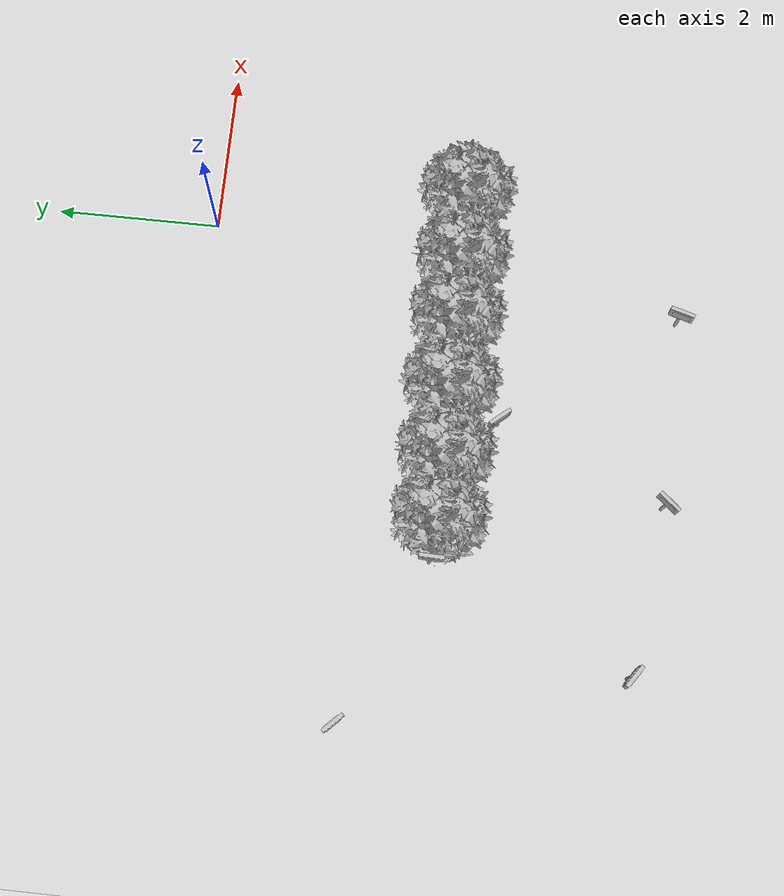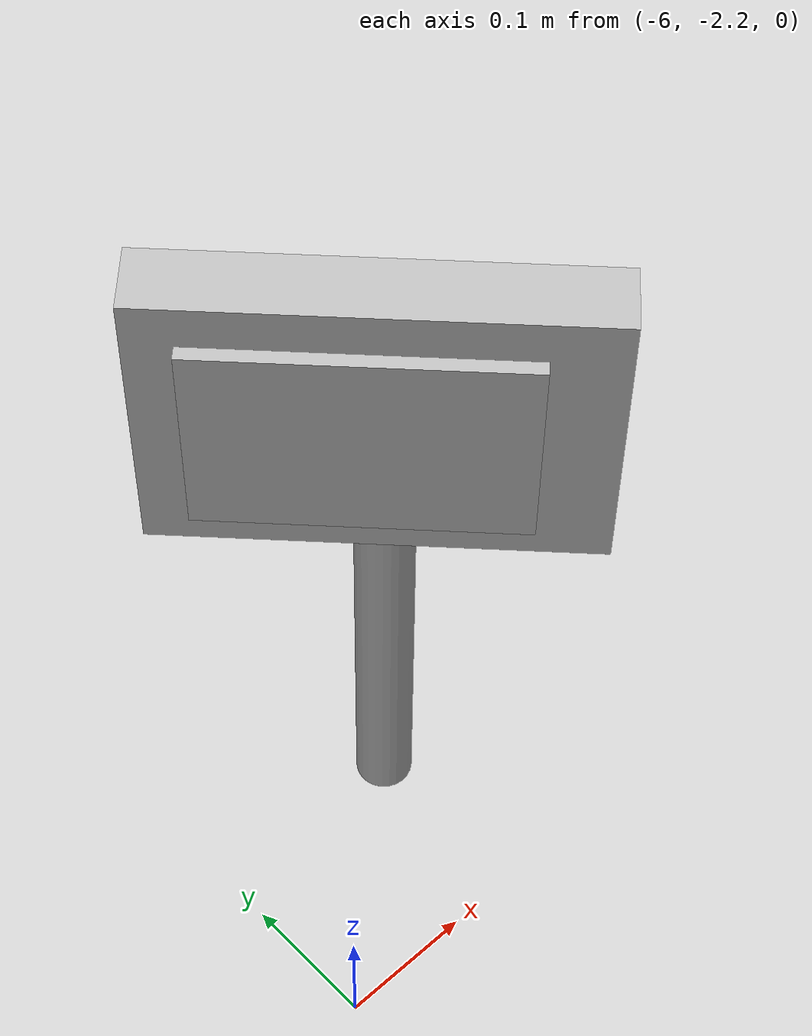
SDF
<sdf version="1.7">
 <world name="default">
  <model name="ground_plane">
   <static>1</static>
   <link name="link">
    <collision name="collision">
     <geometry><plane><normal>0 0 1</normal><size>100 100</size></plane></geometry>
     <surface><friction><ode><mu>100</mu><mu2>50</mu2></ode></friction></surface>
    </collision>
    <visual name="visual">
     <cast_shadows>0</cast_shadows>
     <geometry><plane><normal>0 0 1</normal><size>100 100</size></plane></geometry>
     <material>
      <script><uri>file://media/materials/scripts/gazebo.material</uri><name>Gazebo/Grey</name></script>
     </material>
    </visual>
   </link>
  </model>
  <model name="abbfre_5">
   <link name="link_0">
    <inertial>
     <mass>1</mass>
     <inertia>
      <ixx>0.166667</ixx>
      <ixy>0</ixy>
      <ixz>0</ixz>
      <iyy>0.166667</iyy>
      <iyz>0</iyz>
      <izz>0.166667</izz>
     </inertia>
    </inertial>
    <pose>0 0 -0 1.60917 -0 0</pose>
    <visual name="visual">
     <geometry><mesh><uri>model://abbfre/meshes/arbufres.obj</uri><scale>1 1 1</scale></mesh></geometry>
    </visual>
    <collision name="collision">
     <geometry><mesh><uri>model://abbfre/meshes/arbufres.obj</uri><scale>1 1 1</scale></mesh></geometry>
     <surface>
      <friction>
       <ode><mu>1</mu><mu2>1</mu2><fdir1>0 0 0</fdir1><slip1>0</slip1><slip2>0</slip2></ode>
       <torsional>
        <coefficient>1</coefficient>
        <patch_radius>0</patch_radius>
        <surface_radius>0</surface_radius>
        <use_patch_radius>1</use_patch_radius>
        <ode><slip>0</slip></ode>
       </torsional>
      </friction>
      <bounce><restitution_coefficient>0</restitution_coefficient><threshold>1e+06</threshold></bounce>
      <contact>
       <collide_without_contact>0</collide_without_contact>
       <collide_without_contact_bitmask>1</collide_without_contact_bitmask>
       <collide_bitmask>1</collide_bitmask>
       <ode>
        <soft_cfm>0</soft_cfm>
        <soft_erp>0.2</soft_erp>
        <kp>1e+13</kp>
        <kd>1</kd>
        <max_vel>0.01</max_vel>
        <min_depth>0</min_depth>
       </ode>
       <bullet>
        <split_impulse>1</split_impulse>
        <split_impulse_penetration_threshold>-0.01</split_impulse_penetration_threshold>
        <soft_cfm>0</soft_cfm>
        <soft_erp>0.2</soft_erp>
        <kp>1e+13</kp>
        <kd>1</kd>
       </bullet>
      </contact>
     </surface>
    </collision>
   </link>
   <static>1</static>
   <pose>-2.51391 -2.9563 0 0 -0 0</pose>
  </model>
  <model name="abbfre_6">
   <link name="link_0">
    <inertial>
     <mass>1</mass>
     <inertia>
      <ixx>0.166667</ixx>
      <ixy>0</ixy>
      <ixz>0</ixz>
      <iyy>0.166667</iyy>
      <iyz>0</iyz>
      <izz>0.166667</izz>
     </inertia>
    </inertial>
    <pose>0 0 -0 1.60917 -0 0</pose>
    <visual name="visual">
     <geometry><mesh><uri>model://abbfre/meshes/arbufres.obj</uri><scale>1 1 1</scale></mesh></geometry>
    </visual>
    <collision name="collision">
     <geometry><mesh><uri>model://abbfre/meshes/arbufres.obj</uri><scale>1 1 1</scale></mesh></geometry>
     <surface>
      <friction>
       <ode><mu>1</mu><mu2>1</mu2><fdir1>0 0 0</fdir1><slip1>0</slip1><slip2>0</slip2></ode>
       <torsional>
        <coefficient>1</coefficient>
        <patch_radius>0</patch_radius>
        <surface_radius>0</surface_radius>
        <use_patch_radius>1</use_patch_radius>
        <ode><slip>0</slip></ode>
       </torsional>
      </friction>
      <bounce><restitution_coefficient>0</restitution_coefficient><threshold>1e+06</threshold></bounce>
      <contact>
       <collide_without_contact>0</collide_without_contact>
       <collide_without_contact_bitmask>1</collide_without_contact_bitmask>
       <collide_bitmask>1</collide_bitmask>
       <ode>
        <soft_cfm>0</soft_cfm>
        <soft_erp>0.2</soft_erp>
        <kp>1e+13</kp>
        <kd>1</kd>
        <max_vel>0.01</max_vel>
        <min_depth>0</min_depth>
       </ode>
       <bullet>
        <split_impulse>1</split_impulse>
        <split_impulse_penetration_threshold>-0.01</split_impulse_penetration_threshold>
        <soft_cfm>0</soft_cfm>
        <soft_erp>0.2</soft_erp>
        <kp>1e+13</kp>
        <kd>1</kd>
       </bullet>
      </contact>
     </surface>
    </collision>
   </link>
   <static>1</static>
   <pose>-0.009938 -2.95191 0 0 -0 0</pose>
  </model>
  <model name="letrero_riego_0">
   <link name="link_0">
    <inertial>
     <mass>0.0543151</mass>
     <inertia>
      <ixx>4.90351e-06</ixx>
      <ixy>0</ixy>
      <ixz>0</ixz>
      <iyy>4.90351e-06</iyy>
      <iyz>0</iyz>
      <izz>1.12837e-07</izz>
     </inertia>
    </inertial>
    <pose>0.002515 0.005109 0.153562 0 -0 0</pose>
    <visual name="visual">
     <geometry><cylinder><radius>0.0203836</radius><length>0.327243</length></cylinder></geometry>
     <material>
      <lighting>1</lighting>
      <script>
       <uri>model://letrero_riego/madera/scripts</uri>
       <uri>model://letrero_riego/madera/textures</uri>
       <name>textur/madera</name>
      </script>
      <shader type="pixel"/>
      <emissive>0 0 0 1</emissive>
     </material>
    </visual>
    <collision name="collision">
     <geometry><cylinder><radius>0.020384</radius><length>0.327243</length></cylinder></geometry>
     <surface>
      <friction>
       <ode><mu>1</mu><mu2>1</mu2><fdir1>0 0 0</fdir1><slip1>0</slip1><slip2>0</slip2></ode>
       <torsional>
        <coefficient>1</coefficient>
        <patch_radius>0</patch_radius>
        <surface_radius>0</surface_radius>
        <use_patch_radius>1</use_patch_radius>
        <ode><slip>0</slip></ode>
       </torsional>
      </friction>
      <bounce><restitution_coefficient>0</restitution_coefficient><threshold>1e+06</threshold></bounce>
      <contact>
       <collide_without_contact>0</collide_without_contact>
       <collide_without_contact_bitmask>1</collide_without_contact_bitmask>
       <collide_bitmask>1</collide_bitmask>
       <ode>
        <soft_cfm>0</soft_cfm>
        <soft_erp>0.2</soft_erp>
        <kp>1e+13</kp>
        <kd>1</kd>
        <max_vel>0.01</max_vel>
        <min_depth>0</min_depth>
       </ode>
       <bullet>
        <split_impulse>1</split_impulse>
        <split_impulse_penetration_threshold>-0.01</split_impulse_penetration_threshold>
        <soft_cfm>0</soft_cfm>
        <soft_erp>0.2</soft_erp>
        <kp>1e+13</kp>
        <kd>1</kd>
       </bullet>
      </contact>
     </surface>
    </collision>
   </link>
   <link name="link_1">
    <inertial>
     <mass>0.00299633</mass>
     <inertia>
      <ixx>1.27855e-05</ixx>
      <ixy>0</ixy>
      <ixz>0</ixz>
      <iyy>3.42923e-05</iyy>
      <iyz>0</iyz>
      <izz>2.25402e-05</izz>
     </inertia>
    </inertial>
    <pose>-0.001542 0.002452 0.422031 0 -0 0</pose>
    <visual name="visual">
     <geometry><box><size>0.296988 0.04549 0.221665</size></box></geometry>
     <material>
      <lighting>1</lighting>
      <script>
       <uri>model://letrero_riego/madera/scripts</uri>
       <uri>model://letrero_riego/madera/textures</uri>
       <name>textur/madera</name>
      </script>
      <shader type="pixel"/>
      <emissive>0 0 0 1</emissive>
     </material>
    </visual>
    <collision name="collision">
     <geometry><box><size>0.296988 0.04549 0.221665</size></box></geometry>
     <surface>
      <friction>
       <ode><mu>1</mu><mu2>1</mu2><fdir1>0 0 0</fdir1><slip1>0</slip1><slip2>0</slip2></ode>
       <torsional>
        <coefficient>1</coefficient>
        <patch_radius>0</patch_radius>
        <surface_radius>0</surface_radius>
        <use_patch_radius>1</use_patch_radius>
        <ode><slip>0</slip></ode>
       </torsional>
      </friction>
      <bounce><restitution_coefficient>0</restitution_coefficient><threshold>1e+06</threshold></bounce>
      <contact>
       <collide_without_contact>0</collide_without_contact>
       <collide_without_contact_bitmask>1</collide_without_contact_bitmask>
       <collide_bitmask>1</collide_bitmask>
       <ode>
        <soft_cfm>0</soft_cfm>
        <soft_erp>0.2</soft_erp>
        <kp>1e+13</kp>
        <kd>1</kd>
        <max_vel>0.01</max_vel>
        <min_depth>0</min_depth>
       </ode>
       <bullet>
        <split_impulse>1</split_impulse>
        <split_impulse_penetration_threshold>-0.01</split_impulse_penetration_threshold>
        <soft_cfm>0</soft_cfm>
        <soft_erp>0.2</soft_erp>
        <kp>1e+13</kp>
        <kd>1</kd>
       </bullet>
      </contact>
     </surface>
    </collision>
   </link>
   <link name="link_2">
    <inertial>
     <mass>0.00173577</mass>
     <inertia>
      <ixx>4.23206e-06</ixx>
      <ixy>0</ixy>
      <ixz>0</ixz>
      <iyy>1.03921e-05</iyy>
      <iyz>0</iyz>
      <izz>7.37287e-06</izz>
     </inertia>
    </inertial>
    <pose>-0.010225 0.002657 0.421501 0 -0 0</pose>
    <visual name="visual">
     <geometry><box><size>0.216284 0.064749 0.15832</size></box></geometry>
     <material>
      <lighting>1</lighting>
      <script>
       <uri>model://letrero_riego/materials/scripts</uri>
       <uri>model://letrero_riego/materials/textures</uri>
       <name>textur/riego</name>
      </script>
      <shader type="pixel"/>
      <emissive>0 0 0 1</emissive>
     </material>
    </visual>
    <collision name="collision">
     <geometry><box><size>0.216284 0.064749 0.15832</size></box></geometry>
     <surface>
      <friction>
       <ode><mu>1</mu><mu2>1</mu2><fdir1>0 0 0</fdir1><slip1>0</slip1><slip2>0</slip2></ode>
       <torsional>
        <coefficient>1</coefficient>
        <patch_radius>0</patch_radius>
        <surface_radius>0</surface_radius>
        <use_patch_radius>1</use_patch_radius>
        <ode><slip>0</slip></ode>
       </torsional>
      </friction>
      <bounce><restitution_coefficient>0</restitution_coefficient><threshold>1e+06</threshold></bounce>
      <contact>
       <collide_without_contact>0</collide_without_contact>
       <collide_without_contact_bitmask>1</collide_without_contact_bitmask>
       <collide_bitmask>1</collide_bitmask>
       <ode>
        <soft_cfm>0</soft_cfm>
        <soft_erp>0.2</soft_erp>
        <kp>1e+13</kp>
        <kd>1</kd>
        <max_vel>0.01</max_vel>
        <min_depth>0</min_depth>
       </ode>
       <bullet>
        <split_impulse>1</split_impulse>
        <split_impulse_penetration_threshold>-0.01</split_impulse_penetration_threshold>
        <soft_cfm>0</soft_cfm>
        <soft_erp>0.2</soft_erp>
        <kp>1e+13</kp>
        <kd>1</kd>
       </bullet>
      </contact>
     </surface>
    </collision>
   </link>
   <joint name="link_0_JOINT_1" type="fixed">
    <parent>link_0</parent>
    <child>link_1</child>
    <physics>
     <ode><limit><cfm>0</cfm><erp>0.2</erp></limit><suspension><cfm>0</cfm><erp>0.2</erp></suspension></ode>
    </physics>
   </joint>
   <joint name="link_0_JOINT_2" type="fixed">
    <parent>link_0</parent>
    <child>link_2</child>
    <physics>
     <ode><limit><cfm>0</cfm><erp>0.2</erp></limit><suspension><cfm>0</cfm><erp>0.2</erp></suspension></ode>
    </physics>
   </joint>
   <static>1</static>
   <pose>-5.86584 -2.08096 0.04184 0 0 -0.797668</pose>
  </model>
  <model name="letrero_riego_4">
   <link name="link_0">
    <inertial>
     <mass>0.0543151</mass>
     <inertia>
      <ixx>4.90351e-06</ixx>
      <ixy>0</ixy>
      <ixz>0</ixz>
      <iyy>4.90351e-06</iyy>
      <iyz>0</iyz>
      <izz>1.12837e-07</izz>
     </inertia>
    </inertial>
    <pose>0.002515 0.005109 0.153562 0 -0 0</pose>
    <visual name="visual">
     <geometry><cylinder><radius>0.0203836</radius><length>0.327243</length></cylinder></geometry>
     <material>
      <lighting>1</lighting>
      <script>
       <uri>model://letrero_riego/madera/scripts</uri>
       <uri>model://letrero_riego/madera/textures</uri>
       <name>textur/madera</name>
      </script>
      <shader type="pixel"/>
      <emissive>0 0 0 1</emissive>
     </material>
    </visual>
    <collision name="collision">
     <geometry><cylinder><radius>0.020384</radius><length>0.327243</length></cylinder></geometry>
     <surface>
      <friction>
       <ode><mu>1</mu><mu2>1</mu2><fdir1>0 0 0</fdir1><slip1>0</slip1><slip2>0</slip2></ode>
       <torsional>
        <coefficient>1</coefficient>
        <patch_radius>0</patch_radius>
        <surface_radius>0</surface_radius>
        <use_patch_radius>1</use_patch_radius>
        <ode><slip>0</slip></ode>
       </torsional>
      </friction>
      <bounce><restitution_coefficient>0</restitution_coefficient><threshold>1e+06</threshold></bounce>
      <contact>
       <collide_without_contact>0</collide_without_contact>
       <collide_without_contact_bitmask>1</collide_without_contact_bitmask>
       <collide_bitmask>1</collide_bitmask>
       <ode>
        <soft_cfm>0</soft_cfm>
        <soft_erp>0.2</soft_erp>
        <kp>1e+13</kp>
        <kd>1</kd>
        <max_vel>0.01</max_vel>
        <min_depth>0</min_depth>
       </ode>
       <bullet>
        <split_impulse>1</split_impulse>
        <split_impulse_penetration_threshold>-0.01</split_impulse_penetration_threshold>
        <soft_cfm>0</soft_cfm>
        <soft_erp>0.2</soft_erp>
        <kp>1e+13</kp>
        <kd>1</kd>
       </bullet>
      </contact>
     </surface>
    </collision>
   </link>
   <link name="link_1">
    <inertial>
     <mass>0.00299633</mass>
     <inertia>
      <ixx>1.27855e-05</ixx>
      <ixy>0</ixy>
      <ixz>0</ixz>
      <iyy>3.42923e-05</iyy>
      <iyz>0</iyz>
      <izz>2.25402e-05</izz>
     </inertia>
    </inertial>
    <pose>-0.001542 0.002452 0.422031 0 -0 0</pose>
    <visual name="visual">
     <geometry><box><size>0.296988 0.04549 0.221665</size></box></geometry>
     <material>
      <lighting>1</lighting>
      <script>
       <uri>model://letrero_riego/madera/scripts</uri>
       <uri>model://letrero_riego/madera/textures</uri>
       <name>textur/madera</name>
      </script>
      <shader type="pixel"/>
      <emissive>0 0 0 1</emissive>
     </material>
    </visual>
    <collision name="collision">
     <geometry><box><size>0.296988 0.04549 0.221665</size></box></geometry>
     <surface>
      <friction>
       <ode><mu>1</mu><mu2>1</mu2><fdir1>0 0 0</fdir1><slip1>0</slip1><slip2>0</slip2></ode>
       <torsional>
        <coefficient>1</coefficient>
        <patch_radius>0</patch_radius>
        <surface_radius>0</surface_radius>
        <use_patch_radius>1</use_patch_radius>
        <ode><slip>0</slip></ode>
       </torsional>
      </friction>
      <bounce><restitution_coefficient>0</restitution_coefficient><threshold>1e+06</threshold></bounce>
      <contact>
       <collide_without_contact>0</collide_without_contact>
       <collide_without_contact_bitmask>1</collide_without_contact_bitmask>
       <collide_bitmask>1</collide_bitmask>
       <ode>
        <soft_cfm>0</soft_cfm>
        <soft_erp>0.2</soft_erp>
        <kp>1e+13</kp>
        <kd>1</kd>
        <max_vel>0.01</max_vel>
        <min_depth>0</min_depth>
       </ode>
       <bullet>
        <split_impulse>1</split_impulse>
        <split_impulse_penetration_threshold>-0.01</split_impulse_penetration_threshold>
        <soft_cfm>0</soft_cfm>
        <soft_erp>0.2</soft_erp>
        <kp>1e+13</kp>
        <kd>1</kd>
       </bullet>
      </contact>
     </surface>
    </collision>
   </link>
   <link name="link_2">
    <inertial>
     <mass>0.00173577</mass>
     <inertia>
      <ixx>4.23206e-06</ixx>
      <ixy>0</ixy>
      <ixz>0</ixz>
      <iyy>1.03921e-05</iyy>
      <iyz>0</iyz>
      <izz>7.37287e-06</izz>
     </inertia>
    </inertial>
    <pose>-0.010225 0.002657 0.421501 0 -0 0</pose>
    <visual name="visual">
     <geometry><box><size>0.216284 0.064749 0.15832</size></box></geometry>
     <material>
      <lighting>1</lighting>
      <script>
       <uri>model://letrero_riego/materials/scripts</uri>
       <uri>model://letrero_riego/materials/textures</uri>
       <name>textur/riego</name>
      </script>
      <shader type="pixel"/>
      <emissive>0 0 0 1</emissive>
     </material>
    </visual>
    <collision name="collision">
     <geometry><box><size>0.216284 0.064749 0.15832</size></box></geometry>
     <surface>
      <friction>
       <ode><mu>1</mu><mu2>1</mu2><fdir1>0 0 0</fdir1><slip1>0</slip1><slip2>0</slip2></ode>
       <torsional>
        <coefficient>1</coefficient>
        <patch_radius>0</patch_radius>
        <surface_radius>0</surface_radius>
        <use_patch_radius>1</use_patch_radius>
        <ode><slip>0</slip></ode>
       </torsional>
      </friction>
      <bounce><restitution_coefficient>0</restitution_coefficient><threshold>1e+06</threshold></bounce>
      <contact>
       <collide_without_contact>0</collide_without_contact>
       <collide_without_contact_bitmask>1</collide_without_contact_bitmask>
       <collide_bitmask>1</collide_bitmask>
       <ode>
        <soft_cfm>0</soft_cfm>
        <soft_erp>0.2</soft_erp>
        <kp>1e+13</kp>
        <kd>1</kd>
        <max_vel>0.01</max_vel>
        <min_depth>0</min_depth>
       </ode>
       <bullet>
        <split_impulse>1</split_impulse>
        <split_impulse_penetration_threshold>-0.01</split_impulse_penetration_threshold>
        <soft_cfm>0</soft_cfm>
        <soft_erp>0.2</soft_erp>
        <kp>1e+13</kp>
        <kd>1</kd>
       </bullet>
      </contact>
     </surface>
    </collision>
   </link>
   <joint name="link_0_JOINT_1" type="fixed">
    <parent>link_0</parent>
    <child>link_1</child>
    <physics>
     <ode><limit><cfm>0</cfm><erp>0.2</erp></limit><suspension><cfm>0</cfm><erp>0.2</erp></suspension></ode>
    </physics>
   </joint>
   <joint name="link_0_JOINT_2" type="fixed">
    <parent>link_0</parent>
    <child>link_2</child>
    <physics>
     <ode><limit><cfm>0</cfm><erp>0.2</erp></limit><suspension><cfm>0</cfm><erp>0.2</erp></suspension></ode>
    </physics>
   </joint>
   <static>1</static>
   <pose>-3.91057 -3.00291 -0.00875 0 -0 1.53921</pose>
  </model>
  <model name="letrero_riego_9">
   <link name="link_0">
    <inertial>
     <mass>0.0543151</mass>
     <inertia>
      <ixx>4.90351e-06</ixx>
      <ixy>0</ixy>
      <ixz>0</ixz>
      <iyy>4.90351e-06</iyy>
      <iyz>0</iyz>
      <izz>1.12837e-07</izz>
     </inertia>
    </inertial>
    <pose>0.002515 0.005109 0.153562 0 -0 0</pose>
    <visual name="visual">
     <geometry><cylinder><radius>0.0203836</radius><length>0.327243</length></cylinder></geometry>
     <material>
      <lighting>1</lighting>
      <script>
       <uri>model://letrero_riego/madera/scripts</uri>
       <uri>model://letrero_riego/madera/textures</uri>
       <name>textur/madera</name>
      </script>
      <shader type="pixel"/>
      <emissive>0 0 0 1</emissive>
     </material>
    </visual>
    <collision name="collision">
     <geometry><cylinder><radius>0.020384</radius><length>0.327243</length></cylinder></geometry>
     <surface>
      <friction>
       <ode><mu>1</mu><mu2>1</mu2><fdir1>0 0 0</fdir1><slip1>0</slip1><slip2>0</slip2></ode>
       <torsional>
        <coefficient>1</coefficient>
        <patch_radius>0</patch_radius>
        <surface_radius>0</surface_radius>
        <use_patch_radius>1</use_patch_radius>
        <ode><slip>0</slip></ode>
       </torsional>
      </friction>
      <bounce><restitution_coefficient>0</restitution_coefficient><threshold>1e+06</threshold></bounce>
      <contact>
       <collide_without_contact>0</collide_without_contact>
       <collide_without_contact_bitmask>1</collide_without_contact_bitmask>
       <collide_bitmask>1</collide_bitmask>
       <ode>
        <soft_cfm>0</soft_cfm>
        <soft_erp>0.2</soft_erp>
        <kp>1e+13</kp>
        <kd>1</kd>
        <max_vel>0.01</max_vel>
        <min_depth>0</min_depth>
       </ode>
       <bullet>
        <split_impulse>1</split_impulse>
        <split_impulse_penetration_threshold>-0.01</split_impulse_penetration_threshold>
        <soft_cfm>0</soft_cfm>
        <soft_erp>0.2</soft_erp>
        <kp>1e+13</kp>
        <kd>1</kd>
       </bullet>
      </contact>
     </surface>
    </collision>
   </link>
   <link name="link_1">
    <inertial>
     <mass>0.00299633</mass>
     <inertia>
      <ixx>1.27855e-05</ixx>
      <ixy>0</ixy>
      <ixz>0</ixz>
      <iyy>3.42923e-05</iyy>
      <iyz>0</iyz>
      <izz>2.25402e-05</izz>
     </inertia>
    </inertial>
    <pose>-0.001542 0.002452 0.422031 0 -0 0</pose>
    <visual name="visual">
     <geometry><box><size>0.296988 0.04549 0.221665</size></box></geometry>
     <material>
      <lighting>1</lighting>
      <script>
       <uri>model://letrero_riego/madera/scripts</uri>
       <uri>model://letrero_riego/madera/textures</uri>
       <name>textur/madera</name>
      </script>
      <shader type="pixel"/>
      <emissive>0 0 0 1</emissive>
     </material>
    </visual>
    <collision name="collision">
     <geometry><box><size>0.296988 0.04549 0.221665</size></box></geometry>
     <surface>
      <friction>
       <ode><mu>1</mu><mu2>1</mu2><fdir1>0 0 0</fdir1><slip1>0</slip1><slip2>0</slip2></ode>
       <torsional>
        <coefficient>1</coefficient>
        <patch_radius>0</patch_radius>
        <surface_radius>0</surface_radius>
        <use_patch_radius>1</use_patch_radius>
        <ode><slip>0</slip></ode>
       </torsional>
      </friction>
      <bounce><restitution_coefficient>0</restitution_coefficient><threshold>1e+06</threshold></bounce>
      <contact>
       <collide_without_contact>0</collide_without_contact>
       <collide_without_contact_bitmask>1</collide_without_contact_bitmask>
       <collide_bitmask>1</collide_bitmask>
       <ode>
        <soft_cfm>0</soft_cfm>
        <soft_erp>0.2</soft_erp>
        <kp>1e+13</kp>
        <kd>1</kd>
        <max_vel>0.01</max_vel>
        <min_depth>0</min_depth>
       </ode>
       <bullet>
        <split_impulse>1</split_impulse>
        <split_impulse_penetration_threshold>-0.01</split_impulse_penetration_threshold>
        <soft_cfm>0</soft_cfm>
        <soft_erp>0.2</soft_erp>
        <kp>1e+13</kp>
        <kd>1</kd>
       </bullet>
      </contact>
     </surface>
    </collision>
   </link>
   <link name="link_2">
    <inertial>
     <mass>0.00173577</mass>
     <inertia>
      <ixx>4.23206e-06</ixx>
      <ixy>0</ixy>
      <ixz>0</ixz>
      <iyy>1.03921e-05</iyy>
      <iyz>0</iyz>
      <izz>7.37287e-06</izz>
     </inertia>
    </inertial>
    <pose>-0.010225 0.002657 0.421501 0 -0 0</pose>
    <visual name="visual">
     <geometry><box><size>0.216284 0.064749 0.15832</size></box></geometry>
     <material>
      <lighting>1</lighting>
      <script>
       <uri>model://letrero_riego/materials/scripts</uri>
       <uri>model://letrero_riego/materials/textures</uri>
       <name>textur/riego</name>
      </script>
      <shader type="pixel"/>
      <emissive>0 0 0 1</emissive>
     </material>
    </visual>
    <collision name="collision">
     <geometry><box><size>0.216284 0.064749 0.15832</size></box></geometry>
     <surface>
      <friction>
       <ode><mu>1</mu><mu2>1</mu2><fdir1>0 0 0</fdir1><slip1>0</slip1><slip2>0</slip2></ode>
       <torsional>
        <coefficient>1</coefficient>
        <patch_radius>0</patch_radius>
        <surface_radius>0</surface_radius>
        <use_patch_radius>1</use_patch_radius>
        <ode><slip>0</slip></ode>
       </torsional>
      </friction>
      <bounce><restitution_coefficient>0</restitution_coefficient><threshold>1e+06</threshold></bounce>
      <contact>
       <collide_without_contact>0</collide_without_contact>
       <collide_without_contact_bitmask>1</collide_without_contact_bitmask>
       <collide_bitmask>1</collide_bitmask>
       <ode>
        <soft_cfm>0</soft_cfm>
        <soft_erp>0.2</soft_erp>
        <kp>1e+13</kp>
        <kd>1</kd>
        <max_vel>0.01</max_vel>
        <min_depth>0</min_depth>
       </ode>
       <bullet>
        <split_impulse>1</split_impulse>
        <split_impulse_penetration_threshold>-0.01</split_impulse_penetration_threshold>
        <soft_cfm>0</soft_cfm>
        <soft_erp>0.2</soft_erp>
        <kp>1e+13</kp>
        <kd>1</kd>
       </bullet>
      </contact>
     </surface>
    </collision>
   </link>
   <joint name="link_0_JOINT_1" type="fixed">
    <parent>link_0</parent>
    <child>link_1</child>
    <physics>
     <ode><limit><cfm>0</cfm><erp>0.2</erp></limit><suspension><cfm>0</cfm><erp>0.2</erp></suspension></ode>
    </physics>
   </joint>
   <joint name="link_0_JOINT_2" type="fixed">
    <parent>link_0</parent>
    <child>link_2</child>
    <physics>
     <ode><limit><cfm>0</cfm><erp>0.2</erp></limit><suspension><cfm>0</cfm><erp>0.2</erp></suspension></ode>
    </physics>
   </joint>
   <static>1</static>
   <pose>-5.02318 -5.3717 0.055742 0 0 -0.608786</pose>
  </model>
  <model name="letrero_insecto_2">
   <link name="link_0">
    <inertial>
     <mass>0.00543151</mass>
     <inertia>
      <ixx>4.90351e-06</ixx>
      <ixy>0</ixy>
      <ixz>0</ixz>
      <iyy>4.90351e-06</iyy>
      <iyz>0</iyz>
      <izz>1.12837e-07</izz>
     </inertia>
    </inertial>
    <pose>0.002372 -0.000902 -0.178803 0 -0 0</pose>
    <visual name="visual">
     <geometry><cylinder><radius>0.0203836</radius><length>0.327243</length></cylinder></geometry>
     <material>
      <lighting>1</lighting>
      <script>
       <uri>model://letrero_insecto/madera/scripts</uri>
       <uri>model://letrero_insecto/madera/textures</uri>
       <name>textur/madera</name>
      </script>
      <shader type="pixel"/>
      <emissive>0 0 0 1</emissive>
     </material>
    </visual>
    <collision name="collision">
     <geometry><cylinder><radius>0.020384</radius><length>0.327243</length></cylinder></geometry>
     <surface>
      <friction>
       <ode><mu>1</mu><mu2>1</mu2><fdir1>0 0 0</fdir1><slip1>0</slip1><slip2>0</slip2></ode>
       <torsional>
        <coefficient>1</coefficient>
        <patch_radius>0</patch_radius>
        <surface_radius>0</surface_radius>
        <use_patch_radius>1</use_patch_radius>
        <ode><slip>0</slip></ode>
       </torsional>
      </friction>
      <bounce><restitution_coefficient>0</restitution_coefficient><threshold>1e+06</threshold></bounce>
      <contact>
       <collide_without_contact>0</collide_without_contact>
       <collide_without_contact_bitmask>1</collide_without_contact_bitmask>
       <collide_bitmask>1</collide_bitmask>
       <ode>
        <soft_cfm>0</soft_cfm>
        <soft_erp>0.2</soft_erp>
        <kp>1e+13</kp>
        <kd>1</kd>
        <max_vel>0.01</max_vel>
        <min_depth>0</min_depth>
       </ode>
       <bullet>
        <split_impulse>1</split_impulse>
        <split_impulse_penetration_threshold>-0.01</split_impulse_penetration_threshold>
        <soft_cfm>0</soft_cfm>
        <soft_erp>0.2</soft_erp>
        <kp>1e+13</kp>
        <kd>1</kd>
       </bullet>
      </contact>
     </surface>
    </collision>
   </link>
   <link name="link_1">
    <inertial>
     <mass>0.00299633</mass>
     <inertia>
      <ixx>1.27855e-05</ixx>
      <ixy>0</ixy>
      <ixz>0</ixz>
      <iyy>3.42923e-05</iyy>
      <iyz>0</iyz>
      <izz>2.25402e-05</izz>
     </inertia>
    </inertial>
    <pose>-0.001685 -0.003559 0.089666 0 -0 0</pose>
    <visual name="visual">
     <geometry><box><size>0.296988 0.04549 0.221665</size></box></geometry>
     <material>
      <lighting>1</lighting>
      <script>
       <uri>model://letrero_insecto/madera/scripts</uri>
       <uri>model://letrero_insecto/madera/textures</uri>
       <name>textur/madera</name>
      </script>
      <shader type="pixel"/>
      <emissive>0 0 0 1</emissive>
     </material>
    </visual>
    <collision name="collision">
     <geometry><box><size>0.296988 0.04549 0.221665</size></box></geometry>
     <surface>
      <friction>
       <ode><mu>1</mu><mu2>1</mu2><fdir1>0 0 0</fdir1><slip1>0</slip1><slip2>0</slip2></ode>
       <torsional>
        <coefficient>1</coefficient>
        <patch_radius>0</patch_radius>
        <surface_radius>0</surface_radius>
        <use_patch_radius>1</use_patch_radius>
        <ode><slip>0</slip></ode>
       </torsional>
      </friction>
      <bounce><restitution_coefficient>0</restitution_coefficient><threshold>1e+06</threshold></bounce>
      <contact>
       <collide_without_contact>0</collide_without_contact>
       <collide_without_contact_bitmask>1</collide_without_contact_bitmask>
       <collide_bitmask>1</collide_bitmask>
       <ode>
        <soft_cfm>0</soft_cfm>
        <soft_erp>0.2</soft_erp>
        <kp>1e+13</kp>
        <kd>1</kd>
        <max_vel>0.01</max_vel>
        <min_depth>0</min_depth>
       </ode>
       <bullet>
        <split_impulse>1</split_impulse>
        <split_impulse_penetration_threshold>-0.01</split_impulse_penetration_threshold>
        <soft_cfm>0</soft_cfm>
        <soft_erp>0.2</soft_erp>
        <kp>1e+13</kp>
        <kd>1</kd>
       </bullet>
      </contact>
     </surface>
    </collision>
   </link>
   <link name="link_2">
    <inertial>
     <mass>0.00219695</mass>
     <inertia>
      <ixx>5.34209e-06</ixx>
      <ixy>0</ixy>
      <ixz>0</ixz>
      <iyy>1.31531e-05</iyy>
      <iyz>0</iyz>
      <izz>9.31738e-06</izz>
     </inertia>
    </inertial>
    <pose>-0.001275 -0.005928 0.089136 0 -0 0</pose>
    <visual name="visual">
     <geometry><box><size>0.216284 0.06414 0.15832</size></box></geometry>
     <material>
      <lighting>1</lighting>
      <script>
       <uri>model://letrero_insecto/materials/scripts</uri>
       <uri>model://letrero_insecto/materials/textures</uri>
       <name>textur/insec</name>
      </script>
      <shader type="pixel"/>
      <emissive>0 0 0 1</emissive>
     </material>
    </visual>
    <collision name="collision">
     <geometry><box><size>0.216284 0.06414 0.15832</size></box></geometry>
     <surface>
      <friction>
       <ode><mu>1</mu><mu2>1</mu2><fdir1>0 0 0</fdir1><slip1>0</slip1><slip2>0</slip2></ode>
       <torsional>
        <coefficient>1</coefficient>
        <patch_radius>0</patch_radius>
        <surface_radius>0</surface_radius>
        <use_patch_radius>1</use_patch_radius>
        <ode><slip>0</slip></ode>
       </torsional>
      </friction>
      <bounce><restitution_coefficient>0</restitution_coefficient><threshold>1e+06</threshold></bounce>
      <contact>
       <collide_without_contact>0</collide_without_contact>
       <collide_without_contact_bitmask>1</collide_without_contact_bitmask>
       <collide_bitmask>1</collide_bitmask>
       <ode>
        <soft_cfm>0</soft_cfm>
        <soft_erp>0.2</soft_erp>
        <kp>1e+13</kp>
        <kd>1</kd>
        <max_vel>0.01</max_vel>
        <min_depth>0</min_depth>
       </ode>
       <bullet>
        <split_impulse>1</split_impulse>
        <split_impulse_penetration_threshold>-0.01</split_impulse_penetration_threshold>
        <soft_cfm>0</soft_cfm>
        <soft_erp>0.2</soft_erp>
        <kp>1e+13</kp>
        <kd>1</kd>
       </bullet>
      </contact>
     </surface>
    </collision>
   </link>
   <joint name="link_0_JOINT_1" type="fixed">
    <parent>link_0</parent>
    <child>link_1</child>
    <physics>
     <ode><limit><cfm>0</cfm><erp>0.2</erp></limit><suspension><cfm>0</cfm><erp>0.2</erp></suspension></ode>
    </physics>
   </joint>
   <joint name="link_0_JOINT_2" type="fixed">
    <parent>link_0</parent>
    <child>link_2</child>
    <physics>
     <ode><limit><cfm>0</cfm><erp>0.2</erp></limit><suspension><cfm>0</cfm><erp>0.2</erp></suspension></ode>
    </physics>
   </joint>
   <static>1</static>
   <pose>-0.698694 -5.73747 0.329388 -0.00662 0.021899 1.27721</pose>
  </model>
  <model name="letrero_insecto_3">
   <link name="link_0">
    <inertial>
     <mass>0.00543151</mass>
     <inertia>
      <ixx>4.90351e-06</ixx>
      <ixy>0</ixy>
      <ixz>0</ixz>
      <iyy>4.90351e-06</iyy>
      <iyz>0</iyz>
      <izz>1.12837e-07</izz>
     </inertia>
    </inertial>
    <pose>0.002372 -0.000902 -0.178803 0 -0 0</pose>
    <visual name="visual">
     <geometry><cylinder><radius>0.0203836</radius><length>0.327243</length></cylinder></geometry>
     <material>
      <lighting>1</lighting>
      <script>
       <uri>model://letrero_insecto/madera/scripts</uri>
       <uri>model://letrero_insecto/madera/textures</uri>
       <name>textur/madera</name>
      </script>
      <shader type="pixel"/>
      <emissive>0 0 0 1</emissive>
     </material>
    </visual>
    <collision name="collision">
     <geometry><cylinder><radius>0.020384</radius><length>0.327243</length></cylinder></geometry>
     <surface>
      <friction>
       <ode><mu>1</mu><mu2>1</mu2><fdir1>0 0 0</fdir1><slip1>0</slip1><slip2>0</slip2></ode>
       <torsional>
        <coefficient>1</coefficient>
        <patch_radius>0</patch_radius>
        <surface_radius>0</surface_radius>
        <use_patch_radius>1</use_patch_radius>
        <ode><slip>0</slip></ode>
       </torsional>
      </friction>
      <bounce><restitution_coefficient>0</restitution_coefficient><threshold>1e+06</threshold></bounce>
      <contact>
       <collide_without_contact>0</collide_without_contact>
       <collide_without_contact_bitmask>1</collide_without_contact_bitmask>
       <collide_bitmask>1</collide_bitmask>
       <ode>
        <soft_cfm>0</soft_cfm>
        <soft_erp>0.2</soft_erp>
        <kp>1e+13</kp>
        <kd>1</kd>
        <max_vel>0.01</max_vel>
        <min_depth>0</min_depth>
       </ode>
       <bullet>
        <split_impulse>1</split_impulse>
        <split_impulse_penetration_threshold>-0.01</split_impulse_penetration_threshold>
        <soft_cfm>0</soft_cfm>
        <soft_erp>0.2</soft_erp>
        <kp>1e+13</kp>
        <kd>1</kd>
       </bullet>
      </contact>
     </surface>
    </collision>
   </link>
   <link name="link_1">
    <inertial>
     <mass>0.00299633</mass>
     <inertia>
      <ixx>1.27855e-05</ixx>
      <ixy>0</ixy>
      <ixz>0</ixz>
      <iyy>3.42923e-05</iyy>
      <iyz>0</iyz>
      <izz>2.25402e-05</izz>
     </inertia>
    </inertial>
    <pose>-0.001685 -0.003559 0.089666 0 -0 0</pose>
    <visual name="visual">
     <geometry><box><size>0.296988 0.04549 0.221665</size></box></geometry>
     <material>
      <lighting>1</lighting>
      <script>
       <uri>model://letrero_insecto/madera/scripts</uri>
       <uri>model://letrero_insecto/madera/textures</uri>
       <name>textur/madera</name>
      </script>
      <shader type="pixel"/>
      <emissive>0 0 0 1</emissive>
     </material>
    </visual>
    <collision name="collision">
     <geometry><box><size>0.296988 0.04549 0.221665</size></box></geometry>
     <surface>
      <friction>
       <ode><mu>1</mu><mu2>1</mu2><fdir1>0 0 0</fdir1><slip1>0</slip1><slip2>0</slip2></ode>
       <torsional>
        <coefficient>1</coefficient>
        <patch_radius>0</patch_radius>
        <surface_radius>0</surface_radius>
        <use_patch_radius>1</use_patch_radius>
        <ode><slip>0</slip></ode>
       </torsional>
      </friction>
      <bounce><restitution_coefficient>0</restitution_coefficient><threshold>1e+06</threshold></bounce>
      <contact>
       <collide_without_contact>0</collide_without_contact>
       <collide_without_contact_bitmask>1</collide_without_contact_bitmask>
       <collide_bitmask>1</collide_bitmask>
       <ode>
        <soft_cfm>0</soft_cfm>
        <soft_erp>0.2</soft_erp>
        <kp>1e+13</kp>
        <kd>1</kd>
        <max_vel>0.01</max_vel>
        <min_depth>0</min_depth>
       </ode>
       <bullet>
        <split_impulse>1</split_impulse>
        <split_impulse_penetration_threshold>-0.01</split_impulse_penetration_threshold>
        <soft_cfm>0</soft_cfm>
        <soft_erp>0.2</soft_erp>
        <kp>1e+13</kp>
        <kd>1</kd>
       </bullet>
      </contact>
     </surface>
    </collision>
   </link>
   <link name="link_2">
    <inertial>
     <mass>0.00219695</mass>
     <inertia>
      <ixx>5.34209e-06</ixx>
      <ixy>0</ixy>
      <ixz>0</ixz>
      <iyy>1.31531e-05</iyy>
      <iyz>0</iyz>
      <izz>9.31738e-06</izz>
     </inertia>
    </inertial>
    <pose>-0.001275 -0.005928 0.089136 0 -0 0</pose>
    <visual name="visual">
     <geometry><box><size>0.216284 0.06414 0.15832</size></box></geometry>
     <material>
      <lighting>1</lighting>
      <script>
       <uri>model://letrero_insecto/materials/scripts</uri>
       <uri>model://letrero_insecto/materials/textures</uri>
       <name>textur/insec</name>
      </script>
      <shader type="pixel"/>
      <emissive>0 0 0 1</emissive>
     </material>
    </visual>
    <collision name="collision">
     <geometry><box><size>0.216284 0.06414 0.15832</size></box></geometry>
     <surface>
      <friction>
       <ode><mu>1</mu><mu2>1</mu2><fdir1>0 0 0</fdir1><slip1>0</slip1><slip2>0</slip2></ode>
       <torsional>
        <coefficient>1</coefficient>
        <patch_radius>0</patch_radius>
        <surface_radius>0</surface_radius>
        <use_patch_radius>1</use_patch_radius>
        <ode><slip>0</slip></ode>
       </torsional>
      </friction>
      <bounce><restitution_coefficient>0</restitution_coefficient><threshold>1e+06</threshold></bounce>
      <contact>
       <collide_without_contact>0</collide_without_contact>
       <collide_without_contact_bitmask>1</collide_without_contact_bitmask>
       <collide_bitmask>1</collide_bitmask>
       <ode>
        <soft_cfm>0</soft_cfm>
        <soft_erp>0.2</soft_erp>
        <kp>1e+13</kp>
        <kd>1</kd>
        <max_vel>0.01</max_vel>
        <min_depth>0</min_depth>
       </ode>
       <bullet>
        <split_impulse>1</split_impulse>
        <split_impulse_penetration_threshold>-0.01</split_impulse_penetration_threshold>
        <soft_cfm>0</soft_cfm>
        <soft_erp>0.2</soft_erp>
        <kp>1e+13</kp>
        <kd>1</kd>
       </bullet>
      </contact>
     </surface>
    </collision>
   </link>
   <joint name="link_0_JOINT_1" type="fixed">
    <parent>link_0</parent>
    <child>link_1</child>
    <physics>
     <ode><limit><cfm>0</cfm><erp>0.2</erp></limit><suspension><cfm>0</cfm><erp>0.2</erp></suspension></ode>
    </physics>
   </joint>
   <joint name="link_0_JOINT_2" type="fixed">
    <parent>link_0</parent>
    <child>link_2</child>
    <physics>
     <ode><limit><cfm>0</cfm><erp>0.2</erp></limit><suspension><cfm>0</cfm><erp>0.2</erp></suspension></ode>
    </physics>
   </joint>
   <static>1</static>
   <pose>-3.00428 -5.67938 0.329517 0 -0 0.864283</pose>
  </model>
  <model name="letrero_fresa_7">
   <link name="link_0">
    <inertial>
     <mass>0.00543151</mass>
     <inertia>
      <ixx>4.90351e-06</ixx>
      <ixy>0</ixy>
      <ixz>0</ixz>
      <iyy>4.90351e-06</iyy>
      <iyz>0</iyz>
      <izz>1.12837e-07</izz>
     </inertia>
    </inertial>
    <pose>0.002372 -0.000902 -0.178803 0 -0 0</pose>
    <visual name="visual">
     <geometry><cylinder><radius>0.0203836</radius><length>0.327243</length></cylinder></geometry>
     <material>
      <lighting>1</lighting>
      <script>
       <uri>model://letrero_fresa/madera/scripts</uri>
       <uri>model://letrero_fresa/madera/textures</uri>
       <name>textur/madera</name>
      </script>
      <shader type="pixel"/>
      <emissive>0 0 0 1</emissive>
     </material>
    </visual>
    <collision name="collision">
     <geometry><cylinder><radius>0.020384</radius><length>0.327243</length></cylinder></geometry>
     <surface>
      <friction>
       <ode><mu>1</mu><mu2>1</mu2><fdir1>0 0 0</fdir1><slip1>0</slip1><slip2>0</slip2></ode>
       <torsional>
        <coefficient>1</coefficient>
        <patch_radius>0</patch_radius>
        <surface_radius>0</surface_radius>
        <use_patch_radius>1</use_patch_radius>
        <ode><slip>0</slip></ode>
       </torsional>
      </friction>
      <bounce><restitution_coefficient>0</restitution_coefficient><threshold>1e+06</threshold></bounce>
      <contact>
       <collide_without_contact>0</collide_without_contact>
       <collide_without_contact_bitmask>1</collide_without_contact_bitmask>
       <collide_bitmask>1</collide_bitmask>
       <ode>
        <soft_cfm>0</soft_cfm>
        <soft_erp>0.2</soft_erp>
        <kp>1e+13</kp>
        <kd>1</kd>
        <max_vel>0.01</max_vel>
        <min_depth>0</min_depth>
       </ode>
       <bullet>
        <split_impulse>1</split_impulse>
        <split_impulse_penetration_threshold>-0.01</split_impulse_penetration_threshold>
        <soft_cfm>0</soft_cfm>
        <soft_erp>0.2</soft_erp>
        <kp>1e+13</kp>
        <kd>1</kd>
       </bullet>
      </contact>
     </surface>
    </collision>
   </link>
   <link name="link_1">
    <inertial>
     <mass>0.00299633</mass>
     <inertia>
      <ixx>1.27855e-05</ixx>
      <ixy>0</ixy>
      <ixz>0</ixz>
      <iyy>3.42923e-05</iyy>
      <iyz>0</iyz>
      <izz>2.25402e-05</izz>
     </inertia>
    </inertial>
    <pose>-0.001685 -0.003559 0.089666 0 -0 0</pose>
    <visual name="visual">
     <geometry><box><size>0.296988 0.04549 0.221665</size></box></geometry>
     <material>
      <lighting>1</lighting>
      <script>
       <uri>model://letrero_fresa/madera/scripts</uri>
       <uri>model://letrero_fresa/madera/textures</uri>
       <name>textur/madera</name>
      </script>
      <shader type="pixel"/>
      <emissive>0 0 0 1</emissive>
     </material>
    </visual>
    <collision name="collision">
     <geometry><box><size>0.296988 0.04549 0.221665</size></box></geometry>
     <surface>
      <friction>
       <ode><mu>1</mu><mu2>1</mu2><fdir1>0 0 0</fdir1><slip1>0</slip1><slip2>0</slip2></ode>
       <torsional>
        <coefficient>1</coefficient>
        <patch_radius>0</patch_radius>
        <surface_radius>0</surface_radius>
        <use_patch_radius>1</use_patch_radius>
        <ode><slip>0</slip></ode>
       </torsional>
      </friction>
      <bounce><restitution_coefficient>0</restitution_coefficient><threshold>1e+06</threshold></bounce>
      <contact>
       <collide_without_contact>0</collide_without_contact>
       <collide_without_contact_bitmask>1</collide_without_contact_bitmask>
       <collide_bitmask>1</collide_bitmask>
       <ode>
        <soft_cfm>0</soft_cfm>
        <soft_erp>0.2</soft_erp>
        <kp>1e+13</kp>
        <kd>1</kd>
        <max_vel>0.01</max_vel>
        <min_depth>0</min_depth>
       </ode>
       <bullet>
        <split_impulse>1</split_impulse>
        <split_impulse_penetration_threshold>-0.01</split_impulse_penetration_threshold>
        <soft_cfm>0</soft_cfm>
        <soft_erp>0.2</soft_erp>
        <kp>1e+13</kp>
        <kd>1</kd>
       </bullet>
      </contact>
     </surface>
    </collision>
   </link>
   <link name="link_2">
    <inertial>
     <mass>0.00219695</mass>
     <inertia>
      <ixx>5.34209e-06</ixx>
      <ixy>0</ixy>
      <ixz>0</ixz>
      <iyy>1.31531e-05</iyy>
      <iyz>0</iyz>
      <izz>9.31738e-06</izz>
     </inertia>
    </inertial>
    <pose>-0.001275 -0.005928 0.089136 0 -0 0</pose>
    <visual name="visual">
     <geometry><box><size>0.216284 0.06414 0.15832</size></box></geometry>
     <material>
      <lighting>1</lighting>
      <script>
       <uri>model://letrero_fresa/materials/scripts</uri>
       <uri>model://letrero_fresa/materials/textures</uri>
       <name>textur/difre</name>
      </script>
      <shader type="pixel"/>
      <emissive>0 0 0 1</emissive>
     </material>
    </visual>
    <collision name="collision">
     <geometry><box><size>0.216284 0.06414 0.15832</size></box></geometry>
     <surface>
      <friction>
       <ode><mu>1</mu><mu2>1</mu2><fdir1>0 0 0</fdir1><slip1>0</slip1><slip2>0</slip2></ode>
       <torsional>
        <coefficient>1</coefficient>
        <patch_radius>0</patch_radius>
        <surface_radius>0</surface_radius>
        <use_patch_radius>1</use_patch_radius>
        <ode><slip>0</slip></ode>
       </torsional>
      </friction>
      <bounce><restitution_coefficient>0</restitution_coefficient><threshold>1e+06</threshold></bounce>
      <contact>
       <collide_without_contact>0</collide_without_contact>
       <collide_without_contact_bitmask>1</collide_without_contact_bitmask>
       <collide_bitmask>1</collide_bitmask>
       <ode>
        <soft_cfm>0</soft_cfm>
        <soft_erp>0.2</soft_erp>
        <kp>1e+13</kp>
        <kd>1</kd>
        <max_vel>0.01</max_vel>
        <min_depth>0</min_depth>
       </ode>
       <bullet>
        <split_impulse>1</split_impulse>
        <split_impulse_penetration_threshold>-0.01</split_impulse_penetration_threshold>
        <soft_cfm>0</soft_cfm>
        <soft_erp>0.2</soft_erp>
        <kp>1e+13</kp>
        <kd>1</kd>
       </bullet>
      </contact>
     </surface>
    </collision>
   </link>
   <joint name="link_0_JOINT_1" type="fixed">
    <parent>link_0</parent>
    <child>link_1</child>
    <physics>
     <ode><limit><cfm>0</cfm><erp>0.2</erp></limit><suspension><cfm>0</cfm><erp>0.2</erp></suspension></ode>
    </physics>
   </joint>
   <joint name="link_0_JOINT_2" type="fixed">
    <parent>link_0</parent>
    <child>link_2</child>
    <physics>
     <ode><limit><cfm>0</cfm><erp>0.2</erp></limit><suspension><cfm>0</cfm><erp>0.2</erp></suspension></ode>
    </physics>
   </joint>
   <static>1</static>
   <pose>-2.1793 -3.66278 0.268411 0 0 -0.879543</pose>
  </model>
 </world>
</sdf>
